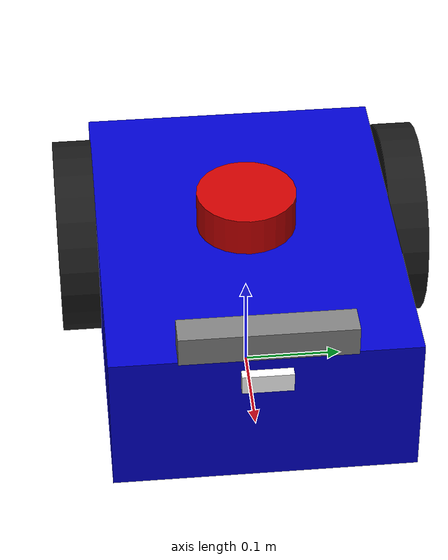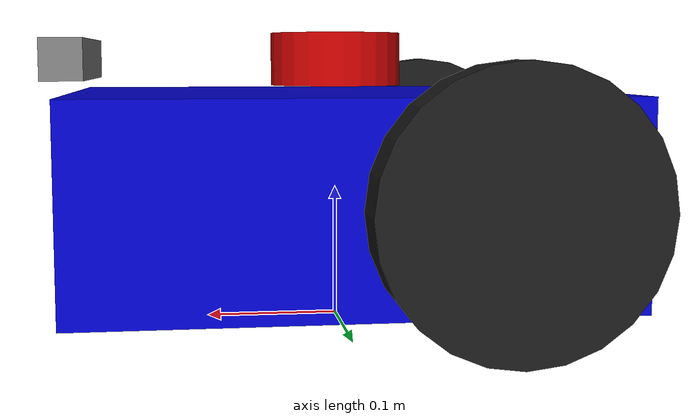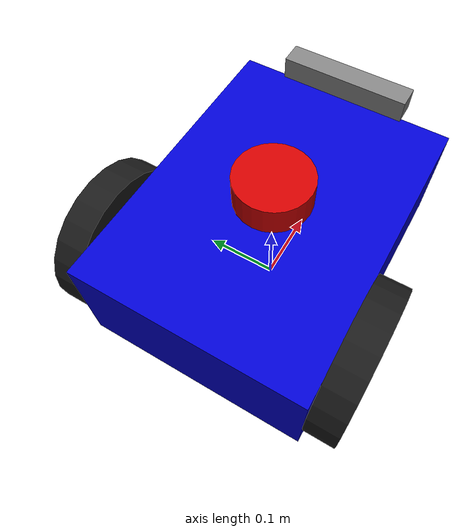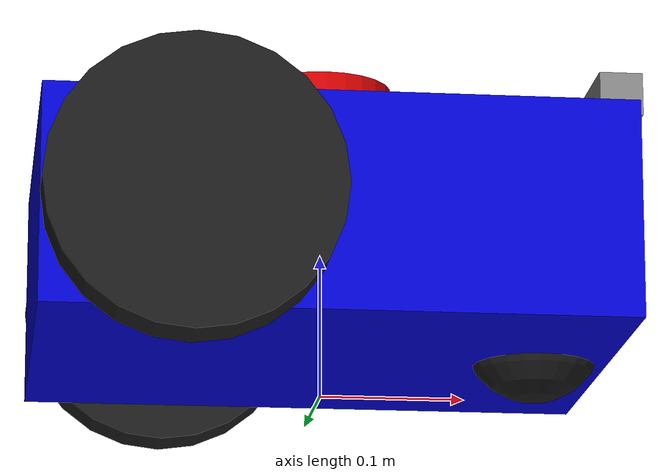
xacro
<?xml version="1.0"?>
<robot name="aria_robot" xmlns:xacro="http://ros.org/wiki/xacro">

  <!-- Base footprint -->
  <link name="base_footprint"/>

  <!-- Base link -->
  <link name="base_link">
    <visual>
      <geometry><box size="0.4 0.3 0.15"/></geometry>
      <material name="blue"><color rgba="0 0 0.8 1"/></material>
    </visual>
    <collision>
      <geometry><box size="0.4 0.3 0.15"/></geometry>
    </collision>
    <inertial>
      <mass value="5.0"/>
      <inertia ixx="0.046" ixy="0" ixz="0" iyy="0.076" iyz="0" izz="0.104"/>
    </inertial>
  </link>

  <joint name="base_joint" type="fixed">
    <parent link="base_footprint"/>
    <child link="base_link"/>
    <origin xyz="0 0 0.1" rpy="0 0 0"/>
  </joint>

  <!-- Left wheel -->
  <link name="left_wheel">
    <visual>
      <geometry><cylinder radius="0.1" length="0.04"/></geometry>
      <material name="black"><color rgba="0.1 0.1 0.1 1"/></material>
    </visual>
    <collision>
      <geometry><cylinder radius="0.1" length="0.04"/></geometry>
    </collision>
    <inertial>
      <mass value="1.0"/>
      <inertia ixx="0.0026" ixy="0" ixz="0" iyy="0.0026" iyz="0" izz="0.005"/>
    </inertial>
  </link>

  <joint name="left_wheel_joint" type="continuous">
    <parent link="base_link"/>
    <child link="left_wheel"/>
    <origin xyz="-0.1 0.17 0" rpy="-1.5708 0 0"/>
    <axis xyz="0 0 1"/>
  </joint>

  <!-- Right wheel -->
  <link name="right_wheel">
    <visual>
      <geometry><cylinder radius="0.1" length="0.04"/></geometry>
      <material name="black"><color rgba="0.1 0.1 0.1 1"/></material>
    </visual>
    <collision>
      <geometry><cylinder radius="0.1" length="0.04"/></geometry>
    </collision>
    <inertial>
      <mass value="1.0"/>
      <inertia ixx="0.0026" ixy="0" ixz="0" iyy="0.0026" iyz="0" izz="0.005"/>
    </inertial>
  </link>

  <joint name="right_wheel_joint" type="continuous">
    <parent link="base_link"/>
    <child link="right_wheel"/>
    <origin xyz="-0.1 -0.17 0" rpy="-1.5708 0 0"/>
    <axis xyz="0 0 1"/>
  </joint>

  <!-- Caster wheel -->
  <link name="caster_wheel">
    <visual>
      <geometry><sphere radius="0.05"/></geometry>
      <material name="black"/>
    </visual>
    <collision>
      <geometry><sphere radius="0.05"/></geometry>
    </collision>
    <inertial>
      <mass value="0.5"/>
      <inertia ixx="0.0005" ixy="0" ixz="0" iyy="0.0005" iyz="0" izz="0.0005"/>
    </inertial>
  </link>

  <joint name="caster_wheel_joint" type="fixed">
    <parent link="base_link"/>
    <child link="caster_wheel"/>
    <origin xyz="0.15 0 -0.05" rpy="0 0 0"/>
  </joint>

  <!-- Lidar -->
  <link name="lidar_link">
    <visual>
      <geometry><cylinder radius="0.05" length="0.04"/></geometry>
      <material name="red"><color rgba="0.8 0 0 1"/></material>
    </visual>
  </link>

  <joint name="lidar_joint" type="fixed">
    <parent link="base_link"/>
    <child link="lidar_link"/>
    <origin xyz="0 0 0.1" rpy="0 0 0"/>
  </joint>

  <gazebo reference="lidar_link">
    <sensor name="lidar" type="gpu_lidar">
      <pose>0 0 0 0 0 0</pose>
      <topic>scan</topic>
      <update_rate>10</update_rate>
      <ray>
        <scan>
          <horizontal>
            <samples>640</samples>
            <resolution>1</resolution>
            <min_angle>-3.14159</min_angle>
            <max_angle>3.14159</max_angle>
          </horizontal>
        </scan>
        <range>
          <min>0.08</min>
          <max>10.0</max>
          <resolution>0.01</resolution>
        </range>
      </ray>
      <always_on>1</always_on>
      <visualize>true</visualize>
    </sensor>
  </gazebo>

  <!-- GPS -->
  <link name="gps_link"/>
  <joint name="gps_joint" type="fixed">
    <parent link="base_link"/>
    <child link="gps_link"/>
    <origin xyz="0 0 0" rpy="0 0 0"/>
  </joint>

  <gazebo reference="gps_link">
    <sensor name="navsat" type="navsat">
      <always_on>1</always_on>
      <update_rate>10</update_rate>
      <topic>gps/fix</topic>
    </sensor>
  </gazebo>

  <!-- RGB Camera -->
  <link name="camera_rgb_link">
    <visual>
      <geometry><box size="0.02 0.05 0.02"/></geometry>
      <material name="white"><color rgba="1 1 1 1"/></material>
    </visual>
  </link>
  <joint name="camera_rgb_joint" type="fixed">
    <parent link="base_link"/>
    <child link="camera_rgb_link"/>
    <origin xyz="0.2 0 0.05" rpy="0 0 0"/>
  </joint>

  <gazebo reference="camera_rgb_link">
    <sensor name="camera_rgb" type="camera">
      <pose>0 0 0 0 0 0</pose>
      <topic>camera/image_raw</topic>
      <update_rate>30</update_rate>
      <camera>
        <horizontal_fov>1.047</horizontal_fov>
        <image>
          <width>640</width>
          <height>480</height>
          <format>R8G8B8</format>
        </image>
        <clip>
          <near>0.1</near>
          <far>100</far>
        </clip>
      </camera>
      <always_on>1</always_on>
      <visualize>true</visualize>
    </sensor>
  </gazebo>

  <!-- ZED 2i Depth Camera -->
  <link name="camera_zed_link">
    <visual>
      <geometry><box size="0.03 0.17 0.03"/></geometry>
      <material name="gray"><color rgba="0.5 0.5 0.5 1"/></material>
    </visual>
  </link>
  <joint name="camera_zed_joint" type="fixed">
    <parent link="base_link"/>
    <child link="camera_zed_link"/>
    <origin xyz="0.2 0 0.1" rpy="0 0 0"/>
  </joint>

  <!-- Optical frame for point cloud -->
  <link name="zed2i_left_camera_optical_frame"/>
  <joint name="camera_zed_optical_joint" type="fixed">
    <parent link="camera_zed_link"/>
    <child link="zed2i_left_camera_optical_frame"/>
    <origin xyz="0 0 0" rpy="-1.5708 0 -1.5708"/>
  </joint>

  <gazebo reference="camera_zed_link">
    <sensor name="camera_zed" type="depth_camera">
      <pose>0 0 0 0 0 0</pose>
      <topic>zed/depth</topic>
      <update_rate>15</update_rate>
      <camera>
        <horizontal_fov>1.91986</horizontal_fov>
        <image>
          <width>640</width>
          <height>360</height>
          <format>R8G8B8</format>
        </image>
        <clip>
          <near>0.3</near>
          <far>20.0</far>
        </clip>
      </camera>
      <always_on>1</always_on>
      <visualize>true</visualize>
    </sensor>
  </gazebo>

  <!-- Gazebo Diff Drive Plugin -->
  <gazebo>
    <plugin filename="gz-sim-diff-drive-system" name="gz::sim::systems::DiffDrive">
      <left_joint>left_wheel_joint</left_joint>
      <right_joint>right_wheel_joint</right_joint>
      <wheel_separation>0.34</wheel_separation>
      <wheel_radius>0.1</wheel_radius>
      <odom_publish_frequency>50</odom_publish_frequency>
      <topic>cmd_vel</topic>
      <odom_topic>odom</odom_topic>
      <frame_id>odom</frame_id>
      <child_frame_id>base_footprint</child_frame_id>
    </plugin>
    <plugin filename="gz-sim-joint-state-publisher-system" name="gz::sim::systems::JointStatePublisher">
      <topic>joint_states</topic>
    </plugin>
  </gazebo>

</robot>
